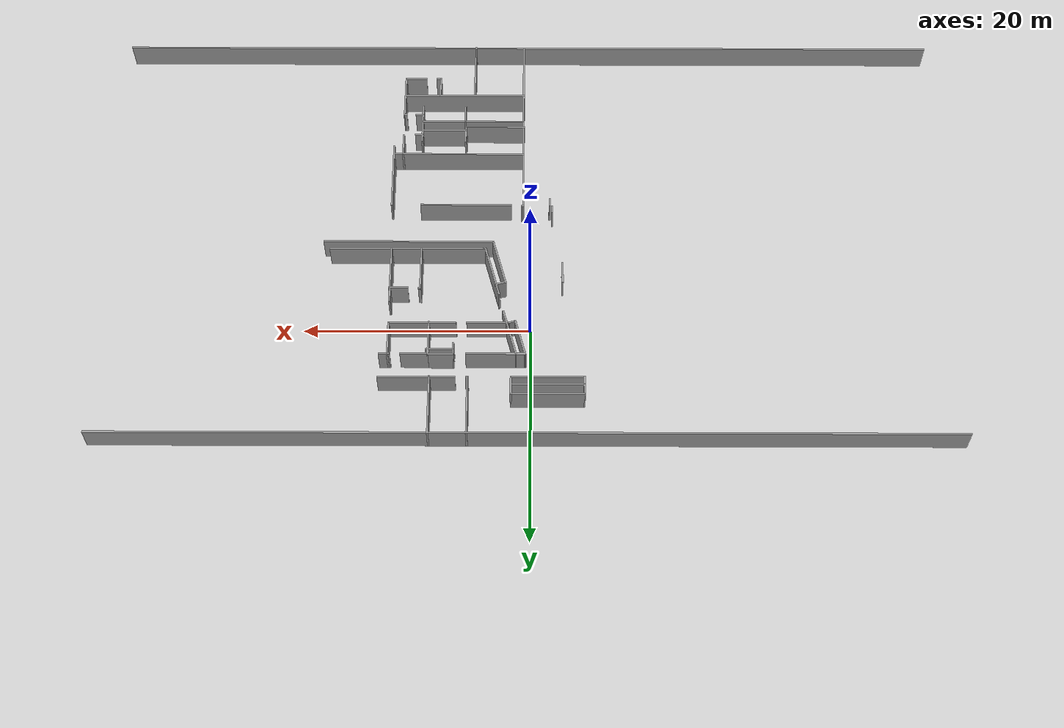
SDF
<sdf version="1.7">
 <world name="default">
  <model name="ground_plane">
   <static>1</static>
   <link name="link">
    <collision name="collision">
     <geometry><plane><normal>0 0 1</normal><size>100 100</size></plane></geometry>
     <surface>
      <contact><collide_bitmask>65535</collide_bitmask></contact>
      <friction><ode><mu>100</mu><mu2>50</mu2></ode></friction>
     </surface>
    </collision>
    <visual name="visual">
     <cast_shadows>0</cast_shadows>
     <geometry><plane><normal>0 0 1</normal><size>100 100</size></plane></geometry>
     <material>
      <script><uri>file://media/materials/scripts/gazebo.material</uri><name>Gazebo/Grey</name></script>
     </material>
    </visual>
   </link>
  </model>
  <model name="gix_2f">
   <pose>0.287504 -9.19255 0 0 -0 0</pose>
   <link name="Wall_12">
    <collision name="Wall_12_Collision">
     <geometry><box><size>0.747125 0.15 2.5</size></box></geometry>
     <pose>0 0 1.25 0 -0 0</pose>
    </collision>
    <visual name="Wall_12_Visual">
     <pose>0 0 1.25 0 -0 0</pose>
     <geometry><box><size>0.747125 0.15 2.5</size></box></geometry>
     <material>
      <script><uri>file://media/materials/scripts/gazebo.material</uri><name>Gazebo/Grey</name></script>
      <ambient>1 1 1 1</ambient>
     </material>
     <meta><layer>0</layer></meta>
    </visual>
    <pose>-2.00806 -2.89118 0 0 -0 -1.58103</pose>
   </link>
   <link name="Wall_160">
    <collision name="Wall_160_Collision">
     <geometry><box><size>18 0.15 2.5</size></box></geometry>
     <pose>0 0 1.25 0 -0 0</pose>
    </collision>
    <visual name="Wall_160_Visual">
     <pose>0 0 1.25 0 -0 0</pose>
     <geometry><box><size>18 0.15 2.5</size></box></geometry>
     <material>
      <script><uri>file://media/materials/scripts/gazebo.material</uri><name>Gazebo/Grey</name></script>
      <ambient>1 1 1 1</ambient>
     </material>
     <meta><layer>0</layer></meta>
    </visual>
    <pose>0.398763 -11.388 0 0 -0 1.5708</pose>
   </link>
   <link name="Wall_161">
    <collision name="Wall_161_Collision">
     <geometry><box><size>0.25 0.15 2.5</size></box></geometry>
     <pose>0 0 1.25 0 -0 0</pose>
    </collision>
    <visual name="Wall_161_Visual">
     <pose>0 0 1.25 0 -0 0</pose>
     <geometry><box><size>0.25 0.15 2.5</size></box></geometry>
     <material>
      <script><uri>file://media/materials/scripts/gazebo.material</uri><name>Gazebo/Grey</name></script>
      <ambient>1 1 1 1</ambient>
     </material>
     <meta><layer>0</layer></meta>
    </visual>
    <pose>0.448763 -2.46302 0 0 -0 0</pose>
   </link>
   <link name="Wall_164">
    <collision name="Wall_164_Collision">
     <geometry><box><size>8.25 0.15 2.5</size></box></geometry>
     <pose>0 0 1.25 0 -0 0</pose>
    </collision>
    <visual name="Wall_164_Visual">
     <pose>0 0 1.25 0 -0 0</pose>
     <geometry><box><size>8.25 0.15 2.5</size></box></geometry>
     <material>
      <script><uri>file://media/materials/scripts/gazebo.material</uri><name>Gazebo/Grey</name></script>
      <ambient>1 1 1 1</ambient>
     </material>
     <meta><layer>0</layer></meta>
    </visual>
    <pose>5.57058 -2.58584 0 0 -0 0</pose>
   </link>
   <link name="Wall_174">
    <collision name="Wall_174_Collision">
     <geometry><box><size>6.5 0.15 2.5</size></box></geometry>
     <pose>0 0 1.25 0 -0 0</pose>
    </collision>
    <visual name="Wall_174_Visual">
     <pose>0 0 1.25 0 -0 0</pose>
     <geometry><box><size>6.5 0.15 2.5</size></box></geometry>
     <material>
      <script><uri>file://media/materials/scripts/gazebo.material</uri><name>Gazebo/Grey</name></script>
      <ambient>1 1 1 1</ambient>
     </material>
     <meta><layer>0</layer></meta>
    </visual>
    <pose>12.2884 -5.79752 0 0 -0 -1.5708</pose>
   </link>
   <link name="Wall_180">
    <collision name="Wall_180_Collision">
     <geometry><box><size>12 0.15 2.5</size></box></geometry>
     <pose>0 0 1.25 0 -0 0</pose>
    </collision>
    <visual name="Wall_180_Visual">
     <pose>0 0 1.25 0 -0 0</pose>
     <geometry><box><size>12 0.15 2.5</size></box></geometry>
     <material>
      <script><uri>file://media/materials/scripts/gazebo.material</uri><name>Gazebo/Grey</name></script>
      <ambient>1 1 1 1</ambient>
     </material>
     <meta><layer>0</layer></meta>
    </visual>
    <pose>6.32009 -8.12995 0 0 -0 0</pose>
   </link>
   <link name="Wall_182">
    <collision name="Wall_182_Collision">
     <geometry><box><size>2.25 0.15 2.5</size></box></geometry>
     <pose>0 0 1.25 0 -0 0</pose>
    </collision>
    <visual name="Wall_182_Visual">
     <pose>0 0 1.25 0 -0 0</pose>
     <geometry><box><size>2.25 0.15 2.5</size></box></geometry>
     <material>
      <script><uri>file://media/materials/scripts/gazebo.material</uri><name>Gazebo/Grey</name></script>
      <ambient>1 1 1 1</ambient>
     </material>
     <meta><layer>0</layer></meta>
    </visual>
    <pose>11.4573 -9.17497 0 0 -0 -1.5708</pose>
   </link>
   <link name="Wall_183">
    <collision name="Wall_183_Collision">
     <geometry><box><size>0.15 0.15 2.5</size></box></geometry>
     <pose>0 0 1.25 0 -0 0</pose>
    </collision>
    <visual name="Wall_183_Visual">
     <pose>0 0 1.25 0 -0 0</pose>
     <geometry><box><size>0.15 0.15 2.5</size></box></geometry>
     <material>
      <script><uri>file://media/materials/scripts/gazebo.material</uri><name>Gazebo/Grey</name></script>
      <ambient>1 1 1 1</ambient>
     </material>
     <meta><layer>0</layer></meta>
    </visual>
    <pose>11.4573 -10.225 0 0 -0 0</pose>
   </link>
   <link name="Wall_185">
    <collision name="Wall_185_Collision">
     <geometry><box><size>4 0.15 2.5</size></box></geometry>
     <pose>0 0 1.25 0 -0 0</pose>
    </collision>
    <visual name="Wall_185_Visual">
     <pose>0 0 1.25 0 -0 0</pose>
     <geometry><box><size>4 0.15 2.5</size></box></geometry>
     <material>
      <script><uri>file://media/materials/scripts/gazebo.material</uri><name>Gazebo/Grey</name></script>
      <ambient>1 1 1 1</ambient>
     </material>
     <meta><layer>0</layer></meta>
    </visual>
    <pose>9.73962 -11.5348 0 0 -0 -1.5708</pose>
   </link>
   <link name="Wall_187">
    <collision name="Wall_187_Collision">
     <geometry><box><size>0.75 0.15 2.5</size></box></geometry>
     <pose>0 0 1.25 0 -0 0</pose>
    </collision>
    <visual name="Wall_187_Visual">
     <pose>0 0 1.25 0 -0 0</pose>
     <geometry><box><size>0.75 0.15 2.5</size></box></geometry>
     <material>
      <script><uri>file://media/materials/scripts/gazebo.material</uri><name>Gazebo/Grey</name></script>
      <ambient>1 1 1 1</ambient>
     </material>
     <meta><layer>0</layer></meta>
    </visual>
    <pose>10.0453 -10.3188 0 0 -0 0</pose>
   </link>
   <link name="Wall_189">
    <collision name="Wall_189_Collision">
     <geometry><box><size>0.75 0.15 2.5</size></box></geometry>
     <pose>0 0 1.25 0 -0 0</pose>
    </collision>
    <visual name="Wall_189_Visual">
     <pose>0 0 1.25 0 -0 0</pose>
     <geometry><box><size>0.75 0.15 2.5</size></box></geometry>
     <material>
      <script><uri>file://media/materials/scripts/gazebo.material</uri><name>Gazebo/Grey</name></script>
      <ambient>1 1 1 1</ambient>
     </material>
     <meta><layer>0</layer></meta>
    </visual>
    <pose>10.0511 -12.5372 0 0 -0 0</pose>
   </link>
   <link name="Wall_19">
    <collision name="Wall_19_Collision">
     <geometry><box><size>75.25 0.15 2.5</size></box></geometry>
     <pose>0 0 1.25 0 -0 0</pose>
    </collision>
    <visual name="Wall_19_Visual">
     <pose>0 0 1.25 0 -0 0</pose>
     <geometry><box><size>75.25 0.15 2.5</size></box></geometry>
     <material>
      <script><uri>file://media/materials/scripts/gazebo.material</uri><name>Gazebo/Grey</name></script>
      <ambient>1 1 1 1</ambient>
     </material>
     <meta><layer>0</layer></meta>
    </visual>
    <pose>-0 20.3107 0 0 -0 0</pose>
   </link>
   <link name="Wall_191">
    <collision name="Wall_191_Collision">
     <geometry><box><size>0.25 0.15 2.5</size></box></geometry>
     <pose>0 0 1.25 0 -0 0</pose>
    </collision>
    <visual name="Wall_191_Visual">
     <pose>0 0 1.25 0 -0 0</pose>
     <geometry><box><size>0.25 0.15 2.5</size></box></geometry>
     <material>
      <script><uri>file://media/materials/scripts/gazebo.material</uri><name>Gazebo/Grey</name></script>
      <ambient>1 1 1 1</ambient>
     </material>
     <meta><layer>0</layer></meta>
    </visual>
    <pose>11.3391 -12.5143 0 0 -0 0</pose>
   </link>
   <link name="Wall_194">
    <collision name="Wall_194_Collision">
     <geometry><box><size>2 0.15 2.5</size></box></geometry>
     <pose>0 0 1.25 0 -0 0</pose>
    </collision>
    <visual name="Wall_194_Visual">
     <pose>0 0 1.25 0 -0 0</pose>
     <geometry><box><size>2 0.15 2.5</size></box></geometry>
     <material>
      <script><uri>file://media/materials/scripts/gazebo.material</uri><name>Gazebo/Grey</name></script>
      <ambient>1 1 1 1</ambient>
     </material>
     <meta><layer>0</layer></meta>
    </visual>
    <pose>10.5126 -16.7012 0 0 -0 0</pose>
   </link>
   <link name="Wall_195">
    <collision name="Wall_195_Collision">
     <geometry><box><size>4.33556 0.15 2.5</size></box></geometry>
     <pose>0 0 1.25 0 -0 0</pose>
    </collision>
    <visual name="Wall_195_Visual">
     <pose>0 0 1.25 0 -0 0</pose>
     <geometry><box><size>4.33556 0.15 2.5</size></box></geometry>
     <material>
      <script><uri>file://media/materials/scripts/gazebo.material</uri><name>Gazebo/Grey</name></script>
      <ambient>1 1 1 1</ambient>
     </material>
     <meta><layer>0</layer></meta>
    </visual>
    <pose>11.4493 -14.6085 0 0 -0 1.56518</pose>
   </link>
   <link name="Wall_197">
    <collision name="Wall_197_Collision">
     <geometry><box><size>5.5 0.15 2.5</size></box></geometry>
     <pose>0 0 1.25 0 -0 0</pose>
    </collision>
    <visual name="Wall_197_Visual">
     <pose>0 0 1.25 0 -0 0</pose>
     <geometry><box><size>5.5 0.15 2.5</size></box></geometry>
     <material>
      <script><uri>file://media/materials/scripts/gazebo.material</uri><name>Gazebo/Grey</name></script>
      <ambient>1 1 1 1</ambient>
     </material>
     <meta><layer>0</layer></meta>
    </visual>
    <pose>3.05339 -11.182 0 0 -0 0</pose>
   </link>
   <link name="Wall_198">
    <collision name="Wall_198_Collision">
     <geometry><box><size>0.16 0.15 2.5</size></box></geometry>
     <pose>0 0 1.25 0 -0 0</pose>
    </collision>
    <visual name="Wall_198_Visual">
     <pose>0 0 1.25 0 -0 0</pose>
     <geometry><box><size>0.16 0.15 2.5</size></box></geometry>
     <material>
      <script><uri>file://media/materials/scripts/gazebo.material</uri><name>Gazebo/Grey</name></script>
      <ambient>1 1 1 1</ambient>
     </material>
     <meta><layer>0</layer></meta>
    </visual>
    <pose>5.73339 -11.182 0 0 -0 0</pose>
   </link>
   <link name="Wall_199">
    <collision name="Wall_199_Collision">
     <geometry><box><size>1.75 0.15 2.5</size></box></geometry>
     <pose>0 0 1.25 0 -0 0</pose>
    </collision>
    <visual name="Wall_199_Visual">
     <pose>0 0 1.25 0 -0 0</pose>
     <geometry><box><size>1.75 0.15 2.5</size></box></geometry>
     <material>
      <script><uri>file://media/materials/scripts/gazebo.material</uri><name>Gazebo/Grey</name></script>
      <ambient>1 1 1 1</ambient>
     </material>
     <meta><layer>0</layer></meta>
    </visual>
    <pose>5.73839 -10.382 0 0 -0 1.5708</pose>
   </link>
   <link name="Wall_201">
    <collision name="Wall_201_Collision">
     <geometry><box><size>5.5 0.15 2.5</size></box></geometry>
     <pose>0 0 1.25 0 -0 0</pose>
    </collision>
    <visual name="Wall_201_Visual">
     <pose>0 0 1.25 0 -0 0</pose>
     <geometry><box><size>5.5 0.15 2.5</size></box></geometry>
     <material>
      <script><uri>file://media/materials/scripts/gazebo.material</uri><name>Gazebo/Grey</name></script>
      <ambient>1 1 1 1</ambient>
     </material>
     <meta><layer>0</layer></meta>
    </visual>
    <pose>3.11628 -11.7766 0 0 -0 0</pose>
   </link>
   <link name="Wall_202">
    <collision name="Wall_202_Collision">
     <geometry><box><size>0.16 0.15 2.5</size></box></geometry>
     <pose>0 0 1.25 0 -0 0</pose>
    </collision>
    <visual name="Wall_202_Visual">
     <pose>0 0 1.25 0 -0 0</pose>
     <geometry><box><size>0.16 0.15 2.5</size></box></geometry>
     <material>
      <script><uri>file://media/materials/scripts/gazebo.material</uri><name>Gazebo/Grey</name></script>
      <ambient>1 1 1 1</ambient>
     </material>
     <meta><layer>0</layer></meta>
    </visual>
    <pose>5.79628 -11.7766 0 0 -0 0</pose>
   </link>
   <link name="Wall_203">
    <collision name="Wall_203_Collision">
     <geometry><box><size>1.75 0.15 2.5</size></box></geometry>
     <pose>0 0 1.25 0 -0 0</pose>
    </collision>
    <visual name="Wall_203_Visual">
     <pose>0 0 1.25 0 -0 0</pose>
     <geometry><box><size>1.75 0.15 2.5</size></box></geometry>
     <material>
      <script><uri>file://media/materials/scripts/gazebo.material</uri><name>Gazebo/Grey</name></script>
      <ambient>1 1 1 1</ambient>
     </material>
     <meta><layer>0</layer></meta>
    </visual>
    <pose>5.80128 -12.5766 0 0 -0 -1.5708</pose>
   </link>
   <link name="Wall_205">
    <collision name="Wall_205_Collision">
     <geometry><box><size>4 0.15 2.5</size></box></geometry>
     <pose>0 0 1.25 0 -0 0</pose>
    </collision>
    <visual name="Wall_205_Visual">
     <pose>0 0 1.25 0 -0 0</pose>
     <geometry><box><size>4 0.15 2.5</size></box></geometry>
     <material>
      <script><uri>file://media/materials/scripts/gazebo.material</uri><name>Gazebo/Grey</name></script>
      <ambient>1 1 1 1</ambient>
     </material>
     <meta><layer>0</layer></meta>
    </visual>
    <pose>7.66643 -10.7818 0 0 -0 0</pose>
   </link>
   <link name="Wall_207">
    <collision name="Wall_207_Collision">
     <geometry><box><size>4 0.15 2.5</size></box></geometry>
     <pose>0 0 1.25 0 -0 0</pose>
    </collision>
    <visual name="Wall_207_Visual">
     <pose>0 0 1.25 0 -0 0</pose>
     <geometry><box><size>4 0.15 2.5</size></box></geometry>
     <material>
      <script><uri>file://media/materials/scripts/gazebo.material</uri><name>Gazebo/Grey</name></script>
      <ambient>1 1 1 1</ambient>
     </material>
     <meta><layer>0</layer></meta>
    </visual>
    <pose>7.72628 -11.7766 0 0 -0 0</pose>
   </link>
   <link name="Wall_21">
    <collision name="Wall_21_Collision">
     <geometry><box><size>75.25 0.15 2.5</size></box></geometry>
     <pose>0 0 1.25 0 -0 0</pose>
    </collision>
    <visual name="Wall_21_Visual">
     <pose>0 0 1.25 0 -0 0</pose>
     <geometry><box><size>75.25 0.15 2.5</size></box></geometry>
     <material>
      <script><uri>file://media/materials/scripts/gazebo.material</uri><name>Gazebo/Grey</name></script>
      <ambient>1 1 1 1</ambient>
     </material>
     <meta><layer>0</layer></meta>
    </visual>
    <pose>-0 -20.2893 0 0 -0 3.14159</pose>
   </link>
   <link name="Wall_210">
    <collision name="Wall_210_Collision">
     <geometry><box><size>11.25 0.15 2.5</size></box></geometry>
     <pose>0 0 1.25 0 -0 0</pose>
    </collision>
    <visual name="Wall_210_Visual">
     <pose>0 0 1.25 0 -0 0</pose>
     <geometry><box><size>11.25 0.15 2.5</size></box></geometry>
     <material>
      <script><uri>file://media/materials/scripts/gazebo.material</uri><name>Gazebo/Grey</name></script>
      <ambient>1 1 1 1</ambient>
     </material>
     <meta><layer>0</layer></meta>
    </visual>
    <pose>5.89181 -14.744 0 0 -0 3.14159</pose>
   </link>
   <link name="Wall_212">
    <collision name="Wall_212_Collision">
     <geometry><box><size>0.5 0.15 2.5</size></box></geometry>
     <pose>0 0 1.25 0 -0 0</pose>
    </collision>
    <visual name="Wall_212_Visual">
     <pose>0 0 1.25 0 -0 0</pose>
     <geometry><box><size>0.5 0.15 2.5</size></box></geometry>
     <material>
      <script><uri>file://media/materials/scripts/gazebo.material</uri><name>Gazebo/Grey</name></script>
      <ambient>1 1 1 1</ambient>
     </material>
     <meta><layer>0</layer></meta>
    </visual>
    <pose>8.35659 -16.6937 0 0 -0 3.14159</pose>
   </link>
   <link name="Wall_213">
    <collision name="Wall_213_Collision">
     <geometry><box><size>2 0.15 2.5</size></box></geometry>
     <pose>0 0 1.25 0 -0 0</pose>
    </collision>
    <visual name="Wall_213_Visual">
     <pose>0 0 1.25 0 -0 0</pose>
     <geometry><box><size>2 0.15 2.5</size></box></geometry>
     <material>
      <script><uri>file://media/materials/scripts/gazebo.material</uri><name>Gazebo/Grey</name></script>
      <ambient>1 1 1 1</ambient>
     </material>
     <meta><layer>0</layer></meta>
    </visual>
    <pose>8.18159 -15.7687 0 0 -0 1.5708</pose>
   </link>
   <link name="Wall_215">
    <collision name="Wall_215_Collision">
     <geometry><box><size>4.5 0.15 2.5</size></box></geometry>
     <pose>0 0 1.25 0 -0 0</pose>
    </collision>
    <visual name="Wall_215_Visual">
     <pose>0 0 1.25 0 -0 0</pose>
     <geometry><box><size>4.5 0.15 2.5</size></box></geometry>
     <material>
      <script><uri>file://media/materials/scripts/gazebo.material</uri><name>Gazebo/Grey</name></script>
      <ambient>1 1 1 1</ambient>
     </material>
     <meta><layer>0</layer></meta>
    </visual>
    <pose>4.95813 -16.9944 0 0 -0 1.5708</pose>
   </link>
   <link name="Wall_219">
    <collision name="Wall_219_Collision">
     <geometry><box><size>0.25 0.15 2.5</size></box></geometry>
     <pose>0 0 1.25 0 -0 0</pose>
    </collision>
    <visual name="Wall_219_Visual">
     <pose>0 0 1.25 0 -0 0</pose>
     <geometry><box><size>0.25 0.15 2.5</size></box></geometry>
     <material>
      <script><uri>file://media/materials/scripts/gazebo.material</uri><name>Gazebo/Grey</name></script>
      <ambient>1 1 1 1</ambient>
     </material>
     <meta><layer>0</layer></meta>
    </visual>
    <pose>4.93526 -20.2572 0 0 -0 1.5708</pose>
   </link>
   <link name="Wall_241">
    <collision name="Wall_241_Collision">
     <geometry><box><size>5.25 0.15 2.5</size></box></geometry>
     <pose>0 0 1.25 0 -0 0</pose>
    </collision>
    <visual name="Wall_241_Visual">
     <pose>0 0 1.25 0 -0 0</pose>
     <geometry><box><size>5.25 0.15 2.5</size></box></geometry>
     <material>
      <script><uri>file://media/materials/scripts/gazebo.material</uri><name>Gazebo/Grey</name></script>
      <ambient>1 1 1 1</ambient>
     </material>
     <meta><layer>0</layer></meta>
    </visual>
    <pose>2.71946 12.7202 0 0 -0 3.14159</pose>
   </link>
   <link name="Wall_242">
    <collision name="Wall_242_Collision">
     <geometry><box><size>3.5 0.15 2.5</size></box></geometry>
     <pose>0 0 1.25 0 -0 0</pose>
    </collision>
    <visual name="Wall_242_Visual">
     <pose>0 0 1.25 0 -0 0</pose>
     <geometry><box><size>3.5 0.15 2.5</size></box></geometry>
     <material>
      <script><uri>file://media/materials/scripts/gazebo.material</uri><name>Gazebo/Grey</name></script>
      <ambient>1 1 1 1</ambient>
     </material>
     <meta><layer>0</layer></meta>
    </visual>
    <pose>0.602983 11.1022 0 0 -0 -1.309</pose>
   </link>
   <link name="Wall_243">
    <collision name="Wall_243_Collision">
     <geometry><box><size>0.75 0.15 2.5</size></box></geometry>
     <pose>0 0 1.25 0 -0 0</pose>
    </collision>
    <visual name="Wall_243_Visual">
     <pose>0 0 1.25 0 -0 0</pose>
     <geometry><box><size>0.75 0.15 2.5</size></box></geometry>
     <material>
      <script><uri>file://media/materials/scripts/gazebo.material</uri><name>Gazebo/Grey</name></script>
      <ambient>1 1 1 1</ambient>
     </material>
     <meta><layer>0</layer></meta>
    </visual>
    <pose>1.32628 9.56195 0 0 -0 0.261799</pose>
   </link>
   <link name="Wall_246">
    <collision name="Wall_246_Collision">
     <geometry><box><size>4.5 0.15 2.5</size></box></geometry>
     <pose>0 0 1.25 0 -0 0</pose>
    </collision>
    <visual name="Wall_246_Visual">
     <pose>0 0 1.25 0 -0 0</pose>
     <geometry><box><size>4.5 0.15 2.5</size></box></geometry>
     <material>
      <script><uri>file://media/materials/scripts/gazebo.material</uri><name>Gazebo/Grey</name></script>
      <ambient>1 1 1 1</ambient>
     </material>
     <meta><layer>0</layer></meta>
    </visual>
    <pose>1.52297 10.625 0 0 -0 -1.309</pose>
   </link>
   <link name="Wall_248">
    <collision name="Wall_248_Collision">
     <geometry><box><size>3.75 0.15 2.5</size></box></geometry>
     <pose>0 0 1.25 0 -0 0</pose>
    </collision>
    <visual name="Wall_248_Visual">
     <pose>0 0 1.25 0 -0 0</pose>
     <geometry><box><size>3.75 0.15 2.5</size></box></geometry>
     <material>
      <script><uri>file://media/materials/scripts/gazebo.material</uri><name>Gazebo/Grey</name></script>
      <ambient>1 1 1 1</ambient>
     </material>
     <meta><layer>0</layer></meta>
    </visual>
    <pose>3.41606 9.63959 0 0 -0 0</pose>
   </link>
   <link name="Wall_250">
    <collision name="Wall_250_Collision">
     <geometry><box><size>1.25 0.15 2.5</size></box></geometry>
     <pose>0 0 1.25 0 -0 0</pose>
    </collision>
    <visual name="Wall_250_Visual">
     <pose>0 0 1.25 0 -0 0</pose>
     <geometry><box><size>1.25 0.15 2.5</size></box></geometry>
     <material>
      <script><uri>file://media/materials/scripts/gazebo.material</uri><name>Gazebo/Grey</name></script>
      <ambient>1 1 1 1</ambient>
     </material>
     <meta><layer>0</layer></meta>
    </visual>
    <pose>6.41504 12.2212 0 0 -0 1.5708</pose>
   </link>
   <link name="Wall_251">
    <collision name="Wall_251_Collision">
     <geometry><box><size>0.15 0.15 2.5</size></box></geometry>
     <pose>0 0 1.25 0 -0 0</pose>
    </collision>
    <visual name="Wall_251_Visual">
     <pose>0 0 1.25 0 -0 0</pose>
     <geometry><box><size>0.15 0.15 2.5</size></box></geometry>
     <material>
      <script><uri>file://media/materials/scripts/gazebo.material</uri><name>Gazebo/Grey</name></script>
      <ambient>1 1 1 1</ambient>
     </material>
     <meta><layer>0</layer></meta>
    </visual>
    <pose>6.41504 12.7712 0 0 -0 0</pose>
   </link>
   <link name="Wall_253">
    <collision name="Wall_253_Collision">
     <geometry><box><size>2.5 0.15 2.5</size></box></geometry>
     <pose>0 0 1.25 0 -0 0</pose>
    </collision>
    <visual name="Wall_253_Visual">
     <pose>0 0 1.25 0 -0 0</pose>
     <geometry><box><size>2.5 0.15 2.5</size></box></geometry>
     <material>
      <script><uri>file://media/materials/scripts/gazebo.material</uri><name>Gazebo/Grey</name></script>
      <ambient>1 1 1 1</ambient>
     </material>
     <meta><layer>0</layer></meta>
    </visual>
    <pose>7.58435 12.2653 0 0 -0 0</pose>
   </link>
   <link name="Wall_255">
    <collision name="Wall_255_Collision">
     <geometry><box><size>2.5 0.15 2.5</size></box></geometry>
     <pose>0 0 1.25 0 -0 0</pose>
    </collision>
    <visual name="Wall_255_Visual">
     <pose>0 0 1.25 0 -0 0</pose>
     <geometry><box><size>2.5 0.15 2.5</size></box></geometry>
     <material>
      <script><uri>file://media/materials/scripts/gazebo.material</uri><name>Gazebo/Grey</name></script>
      <ambient>1 1 1 1</ambient>
     </material>
     <meta><layer>0</layer></meta>
    </visual>
    <pose>9.76834 12.7059 0 0 -0 3.14159</pose>
   </link>
   <link name="Wall_256">
    <collision name="Wall_256_Collision">
     <geometry><box><size>3.25 0.15 2.5</size></box></geometry>
     <pose>0 0 1.25 0 -0 0</pose>
    </collision>
    <visual name="Wall_256_Visual">
     <pose>0 0 1.25 0 -0 0</pose>
     <geometry><box><size>3.25 0.15 2.5</size></box></geometry>
     <material>
      <script><uri>file://media/materials/scripts/gazebo.material</uri><name>Gazebo/Grey</name></script>
      <ambient>1 1 1 1</ambient>
     </material>
     <meta><layer>0</layer></meta>
    </visual>
    <pose>8.59334 11.1559 0 0 -0 -1.5708</pose>
   </link>
   <link name="Wall_259">
    <collision name="Wall_259_Collision">
     <geometry><box><size>0.15 0.15 2.5</size></box></geometry>
     <pose>0 0 1.25 0 -0 0</pose>
    </collision>
    <visual name="Wall_259_Visual">
     <pose>0 0 1.25 0 -0 0</pose>
     <geometry><box><size>0.15 0.15 2.5</size></box></geometry>
     <material>
      <script><uri>file://media/materials/scripts/gazebo.material</uri><name>Gazebo/Grey</name></script>
      <ambient>1 1 1 1</ambient>
     </material>
     <meta><layer>0</layer></meta>
    </visual>
    <pose>12.2258 12.7152 0 0 -0 0</pose>
   </link>
   <link name="Wall_261">
    <collision name="Wall_261_Collision">
     <geometry><box><size>6 0.15 2.5</size></box></geometry>
     <pose>0 0 1.25 0 -0 0</pose>
    </collision>
    <visual name="Wall_261_Visual">
     <pose>0 0 1.25 0 -0 0</pose>
     <geometry><box><size>6 0.15 2.5</size></box></geometry>
     <material>
      <script><uri>file://media/materials/scripts/gazebo.material</uri><name>Gazebo/Grey</name></script>
      <ambient>1 1 1 1</ambient>
     </material>
     <meta><layer>0</layer></meta>
    </visual>
    <pose>9.18804 9.66 0 0 -0 0</pose>
   </link>
   <link name="Wall_262">
    <collision name="Wall_262_Collision">
     <geometry><box><size>3.25 0.15 2.5</size></box></geometry>
     <pose>0 0 1.25 0 -0 0</pose>
    </collision>
    <visual name="Wall_262_Visual">
     <pose>0 0 1.25 0 -0 0</pose>
     <geometry><box><size>3.25 0.15 2.5</size></box></geometry>
     <material>
      <script><uri>file://media/materials/scripts/gazebo.material</uri><name>Gazebo/Grey</name></script>
      <ambient>1 1 1 1</ambient>
     </material>
     <meta><layer>0</layer></meta>
    </visual>
    <pose>12.113 11.21 0 0 -0 1.5708</pose>
   </link>
   <link name="Wall_266">
    <collision name="Wall_266_Collision">
     <geometry><box><size>1 0.15 2.5</size></box></geometry>
     <pose>0 0 1.25 0 -0 0</pose>
    </collision>
    <visual name="Wall_266_Visual">
     <pose>0 0 1.25 0 -0 0</pose>
     <geometry><box><size>1 0.15 2.5</size></box></geometry>
     <material>
      <script><uri>file://media/materials/scripts/gazebo.material</uri><name>Gazebo/Grey</name></script>
      <ambient>1 1 1 1</ambient>
     </material>
     <meta><layer>0</layer></meta>
    </visual>
    <pose>12.3934 12.7276 0 0 -0 3.14159</pose>
   </link>
   <link name="Wall_278">
    <collision name="Wall_278_Collision">
     <geometry><box><size>5 0.15 2.5</size></box></geometry>
     <pose>0 0 1.25 0 -0 0</pose>
    </collision>
    <visual name="Wall_278_Visual">
     <pose>0 0 1.25 0 -0 0</pose>
     <geometry><box><size>5 0.15 2.5</size></box></geometry>
     <material>
      <script><uri>file://media/materials/scripts/gazebo.material</uri><name>Gazebo/Grey</name></script>
      <ambient>1 1 1 1</ambient>
     </material>
     <meta><layer>0</layer></meta>
    </visual>
    <pose>3.10225 4.41824 0 0 -0 -1.309</pose>
   </link>
   <link name="Wall_279">
    <collision name="Wall_279_Collision">
     <geometry><box><size>14 0.15 2.5</size></box></geometry>
     <pose>0 0 1.25 0 -0 0</pose>
    </collision>
    <visual name="Wall_279_Visual">
     <pose>0 0 1.25 0 -0 0</pose>
     <geometry><box><size>14 0.15 2.5</size></box></geometry>
     <material>
      <script><uri>file://media/materials/scripts/gazebo.material</uri><name>Gazebo/Grey</name></script>
      <ambient>1 1 1 1</ambient>
     </material>
     <meta><layer>0</layer></meta>
    </visual>
    <pose>10.6549 2.07587 0 0 -0 0</pose>
   </link>
   <link name="Wall_283">
    <collision name="Wall_283_Collision">
     <geometry><box><size>4.25 0.15 2.5</size></box></geometry>
     <pose>0 0 1.25 0 -0 0</pose>
    </collision>
    <visual name="Wall_283_Visual">
     <pose>0 0 1.25 0 -0 0</pose>
     <geometry><box><size>4.25 0.15 2.5</size></box></geometry>
     <material>
      <script><uri>file://media/materials/scripts/gazebo.material</uri><name>Gazebo/Grey</name></script>
      <ambient>1 1 1 1</ambient>
     </material>
     <meta><layer>0</layer></meta>
    </visual>
    <pose>9.44908 4.12131 0 0 -0 1.5708</pose>
   </link>
   <link name="Wall_284">
    <collision name="Wall_284_Collision">
     <geometry><box><size>0.25 0.15 2.5</size></box></geometry>
     <pose>0 0 1.25 0 -0 0</pose>
    </collision>
    <visual name="Wall_284_Visual">
     <pose>0 0 1.25 0 -0 0</pose>
     <geometry><box><size>0.25 0.15 2.5</size></box></geometry>
     <material>
      <script><uri>file://media/materials/scripts/gazebo.material</uri><name>Gazebo/Grey</name></script>
      <ambient>1 1 1 1</ambient>
     </material>
     <meta><layer>0</layer></meta>
    </visual>
    <pose>9.49908 6.17131 0 0 -0 0</pose>
   </link>
   <link name="Wall_286">
    <collision name="Wall_286_Collision">
     <geometry><box><size>1.75 0.15 2.5</size></box></geometry>
     <pose>0 0 1.25 0 -0 0</pose>
    </collision>
    <visual name="Wall_286_Visual">
     <pose>0 0 1.25 0 -0 0</pose>
     <geometry><box><size>1.75 0.15 2.5</size></box></geometry>
     <material>
      <script><uri>file://media/materials/scripts/gazebo.material</uri><name>Gazebo/Grey</name></script>
      <ambient>1 1 1 1</ambient>
     </material>
     <meta><layer>0</layer></meta>
    </visual>
    <pose>11.3991 6.11356 0 0 -0 0</pose>
   </link>
   <link name="Wall_288">
    <collision name="Wall_288_Collision">
     <geometry><box><size>5.5 0.15 2.5</size></box></geometry>
     <pose>0 0 1.25 0 -0 0</pose>
    </collision>
    <visual name="Wall_288_Visual">
     <pose>0 0 1.25 0 -0 0</pose>
     <geometry><box><size>5.5 0.15 2.5</size></box></geometry>
     <material>
      <script><uri>file://media/materials/scripts/gazebo.material</uri><name>Gazebo/Grey</name></script>
      <ambient>1 1 1 1</ambient>
     </material>
     <meta><layer>0</layer></meta>
    </visual>
    <pose>12.1228 4.75781 0 0 -0 1.5708</pose>
   </link>
   <link name="Wall_293">
    <collision name="Wall_293_Collision">
     <geometry><box><size>1 0.15 2.5</size></box></geometry>
     <pose>0 0 1.25 0 -0 0</pose>
    </collision>
    <visual name="Wall_293_Visual">
     <pose>0 0 1.25 0 -0 0</pose>
     <geometry><box><size>1 0.15 2.5</size></box></geometry>
     <material>
      <script><uri>file://media/materials/scripts/gazebo.material</uri><name>Gazebo/Grey</name></script>
      <ambient>1 1 1 1</ambient>
     </material>
     <meta><layer>0</layer></meta>
    </visual>
    <pose>2.34013 5.64247 0 0 -0 -2.87979</pose>
   </link>
   <link name="Wall_294">
    <collision name="Wall_294_Collision">
     <geometry><box><size>4.5 0.15 2.5</size></box></geometry>
     <pose>0 0 1.25 0 -0 0</pose>
    </collision>
    <visual name="Wall_294_Visual">
     <pose>0 0 1.25 0 -0 0</pose>
     <geometry><box><size>4.5 0.15 2.5</size></box></geometry>
     <material>
      <script><uri>file://media/materials/scripts/gazebo.material</uri><name>Gazebo/Grey</name></script>
      <ambient>1 1 1 1</ambient>
     </material>
     <meta><layer>0</layer></meta>
    </visual>
    <pose>2.49254 3.43158 0 0 -0 -1.309</pose>
   </link>
   <link name="Wall_295">
    <collision name="Wall_295_Collision">
     <geometry><box><size>15.25 0.15 2.5</size></box></geometry>
     <pose>0 0 1.25 0 -0 0</pose>
    </collision>
    <visual name="Wall_295_Visual">
     <pose>0 0 1.25 0 -0 0</pose>
     <geometry><box><size>15.25 0.15 2.5</size></box></geometry>
     <material>
      <script><uri>file://media/materials/scripts/gazebo.material</uri><name>Gazebo/Grey</name></script>
      <ambient>1 1 1 1</ambient>
     </material>
     <meta><layer>0</layer></meta>
    </visual>
    <pose>10.6055 1.33069 0 0 -0 0</pose>
   </link>
   <link name="Wall_298">
    <collision name="Wall_298_Collision">
     <geometry><box><size>2.25 0.15 2.5</size></box></geometry>
     <pose>0 0 1.25 0 -0 0</pose>
    </collision>
    <visual name="Wall_298_Visual">
     <pose>0 0 1.25 0 -0 0</pose>
     <geometry><box><size>2.25 0.15 2.5</size></box></geometry>
     <material>
      <script><uri>file://media/materials/scripts/gazebo.material</uri><name>Gazebo/Grey</name></script>
      <ambient>1 1 1 1</ambient>
     </material>
     <meta><layer>0</layer></meta>
    </visual>
    <pose>7.46504 12.7712 0 0 -0 0</pose>
   </link>
   <link name="Wall_305">
    <collision name="Wall_305_Collision">
     <geometry><box><size>2 0.15 2.5</size></box></geometry>
     <pose>0 0 1.25 0 -0 0</pose>
    </collision>
    <visual name="Wall_305_Visual">
     <pose>0 0 1.25 0 -0 0</pose>
     <geometry><box><size>2 0.15 2.5</size></box></geometry>
     <material>
      <script><uri>file://media/materials/scripts/gazebo.material</uri><name>Gazebo/Grey</name></script>
      <ambient>1 1 1 1</ambient>
     </material>
     <meta><layer>0</layer></meta>
    </visual>
    <pose>-3.11968 4.49367 0 0 -0 -1.5708</pose>
   </link>
   <link name="Wall_351">
    <collision name="Wall_351_Collision">
     <geometry><box><size>0.75 0.15 2.5</size></box></geometry>
     <pose>0 0 1.25 0 -0 0</pose>
    </collision>
    <visual name="Wall_351_Visual">
     <pose>0 0 1.25 0 -0 0</pose>
     <geometry><box><size>0.75 0.15 2.5</size></box></geometry>
     <material>
      <script><uri>file://media/materials/scripts/gazebo.material</uri><name>Gazebo/Grey</name></script>
      <ambient>1 1 1 1</ambient>
     </material>
     <meta><layer>0</layer></meta>
    </visual>
    <pose>-2.21687 -2.14453 0 0 -0 -1.5708</pose>
   </link>
   <link name="Wall_76">
    <collision name="Wall_76_Collision">
     <geometry><box><size>6.5 0.15 2.5</size></box></geometry>
     <pose>0 0 1.25 0 -0 0</pose>
    </collision>
    <visual name="Wall_76_Visual">
     <pose>0 0 1.25 0 -0 0</pose>
     <geometry><box><size>6.5 0.15 2.5</size></box></geometry>
     <material>
      <script><uri>file://media/materials/scripts/gazebo.material</uri><name>Gazebo/Grey</name></script>
      <ambient>1 1 1 1</ambient>
     </material>
     <meta><layer>0</layer></meta>
    </visual>
    <pose>-1.7843 16.58 0 0 -0 0</pose>
   </link>
   <link name="Wall_77">
    <collision name="Wall_77_Collision">
     <geometry><box><size>1.75 0.15 2.5</size></box></geometry>
     <pose>0 0 1.25 0 -0 0</pose>
    </collision>
    <visual name="Wall_77_Visual">
     <pose>0 0 1.25 0 -0 0</pose>
     <geometry><box><size>1.75 0.15 2.5</size></box></geometry>
     <material>
      <script><uri>file://media/materials/scripts/gazebo.material</uri><name>Gazebo/Grey</name></script>
      <ambient>1 1 1 1</ambient>
     </material>
     <meta><layer>0</layer></meta>
    </visual>
    <pose>1.3907 15.78 0 0 -0 -1.5708</pose>
   </link>
   <link name="Wall_78">
    <collision name="Wall_78_Collision">
     <geometry><box><size>6.5 0.15 2.5</size></box></geometry>
     <pose>0 0 1.25 0 -0 0</pose>
    </collision>
    <visual name="Wall_78_Visual">
     <pose>0 0 1.25 0 -0 0</pose>
     <geometry><box><size>6.5 0.15 2.5</size></box></geometry>
     <material>
      <script><uri>file://media/materials/scripts/gazebo.material</uri><name>Gazebo/Grey</name></script>
      <ambient>1 1 1 1</ambient>
     </material>
     <meta><layer>0</layer></meta>
    </visual>
    <pose>-1.7843 14.98 0 0 -0 3.14159</pose>
   </link>
   <link name="Wall_79">
    <collision name="Wall_79_Collision">
     <geometry><box><size>1.75 0.15 2.5</size></box></geometry>
     <pose>0 0 1.25 0 -0 0</pose>
    </collision>
    <visual name="Wall_79_Visual">
     <pose>0 0 1.25 0 -0 0</pose>
     <geometry><box><size>1.75 0.15 2.5</size></box></geometry>
     <material>
      <script><uri>file://media/materials/scripts/gazebo.material</uri><name>Gazebo/Grey</name></script>
      <ambient>1 1 1 1</ambient>
     </material>
     <meta><layer>0</layer></meta>
    </visual>
    <pose>-4.9593 15.78 0 0 -0 1.5708</pose>
   </link>
   <link name="Wall_81">
    <collision name="Wall_81_Collision">
     <geometry><box><size>6.5 0.15 2.5</size></box></geometry>
     <pose>0 0 1.25 0 -0 0</pose>
    </collision>
    <visual name="Wall_81_Visual">
     <pose>0 0 1.25 0 -0 0</pose>
     <geometry><box><size>6.5 0.15 2.5</size></box></geometry>
     <material>
      <script><uri>file://media/materials/scripts/gazebo.material</uri><name>Gazebo/Grey</name></script>
      <ambient>1 1 1 1</ambient>
     </material>
     <meta><layer>0</layer></meta>
    </visual>
    <pose>-1.80263 15.6781 0 0 -0 0</pose>
   </link>
   <link name="Wall_85">
    <collision name="Wall_85_Collision">
     <geometry><box><size>5.5 0.15 2.5</size></box></geometry>
     <pose>0 0 1.25 0 -0 0</pose>
    </collision>
    <visual name="Wall_85_Visual">
     <pose>0 0 1.25 0 -0 0</pose>
     <geometry><box><size>5.5 0.15 2.5</size></box></geometry>
     <material>
      <script><uri>file://media/materials/scripts/gazebo.material</uri><name>Gazebo/Grey</name></script>
      <ambient>1 1 1 1</ambient>
     </material>
     <meta><layer>0</layer></meta>
    </visual>
    <pose>5.13249 17.639 0 0 -0 -1.5708</pose>
   </link>
   <link name="Wall_86">
    <collision name="Wall_86_Collision">
     <geometry><box><size>0.25 0.15 2.5</size></box></geometry>
     <pose>0 0 1.25 0 -0 0</pose>
    </collision>
    <visual name="Wall_86_Visual">
     <pose>0 0 1.25 0 -0 0</pose>
     <geometry><box><size>0.25 0.15 2.5</size></box></geometry>
     <material>
      <script><uri>file://media/materials/scripts/gazebo.material</uri><name>Gazebo/Grey</name></script>
      <ambient>1 1 1 1</ambient>
     </material>
     <meta><layer>0</layer></meta>
    </visual>
    <pose>5.1825 14.964 0 0 -0 0</pose>
   </link>
   <link name="Wall_88">
    <collision name="Wall_88_Collision">
     <geometry><box><size>5.5 0.15 2.5</size></box></geometry>
     <pose>0 0 1.25 0 -0 0</pose>
    </collision>
    <visual name="Wall_88_Visual">
     <pose>0 0 1.25 0 -0 0</pose>
     <geometry><box><size>5.5 0.15 2.5</size></box></geometry>
     <material>
      <script><uri>file://media/materials/scripts/gazebo.material</uri><name>Gazebo/Grey</name></script>
      <ambient>1 1 1 1</ambient>
     </material>
     <meta><layer>0</layer></meta>
    </visual>
    <pose>8.42567 17.6446 0 0 -0 -1.5708</pose>
   </link>
   <link name="Wall_90">
    <collision name="Wall_90_Collision">
     <geometry><box><size>6.75 0.15 2.5</size></box></geometry>
     <pose>0 0 1.25 0 -0 0</pose>
    </collision>
    <visual name="Wall_90_Visual">
     <pose>0 0 1.25 0 -0 0</pose>
     <geometry><box><size>6.75 0.15 2.5</size></box></geometry>
     <material>
      <script><uri>file://media/materials/scripts/gazebo.material</uri><name>Gazebo/Grey</name></script>
      <ambient>1 1 1 1</ambient>
     </material>
     <meta><layer>0</layer></meta>
    </visual>
    <pose>9.5524 14.9862 0 0 -0 0</pose>
   </link>
   <static>1</static>
  </model>
 </world>
</sdf>
